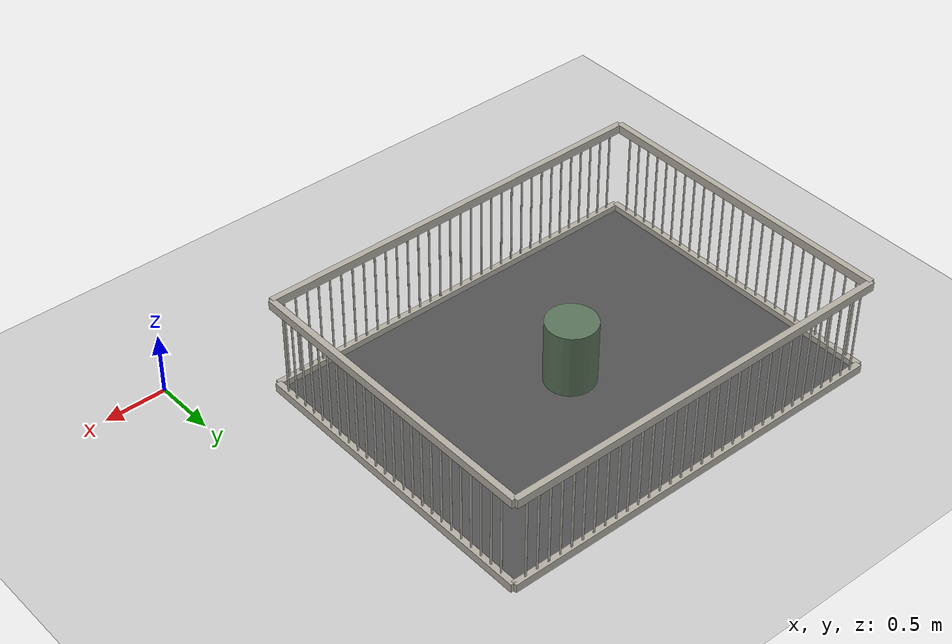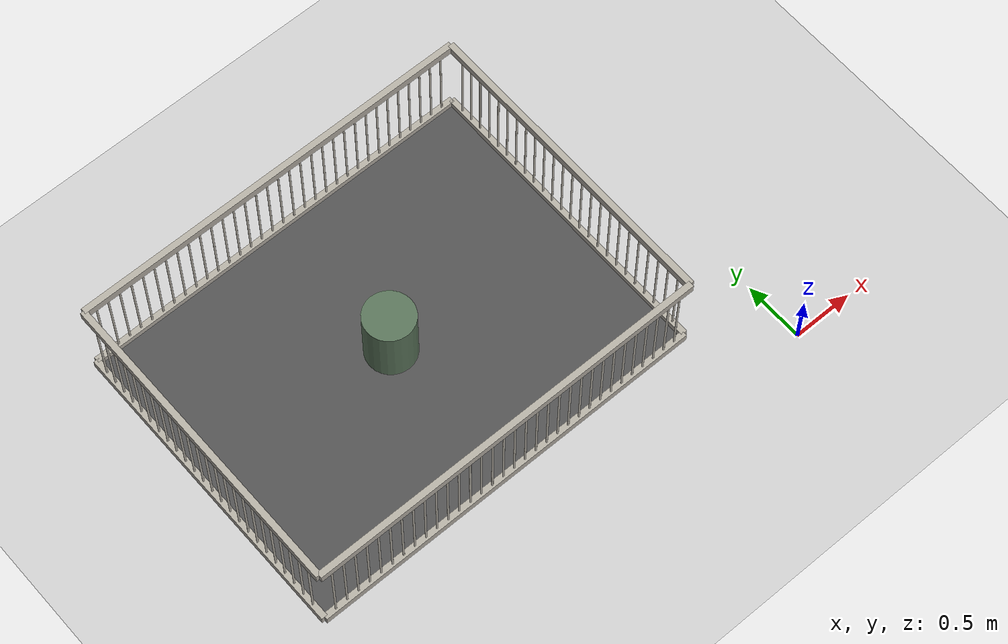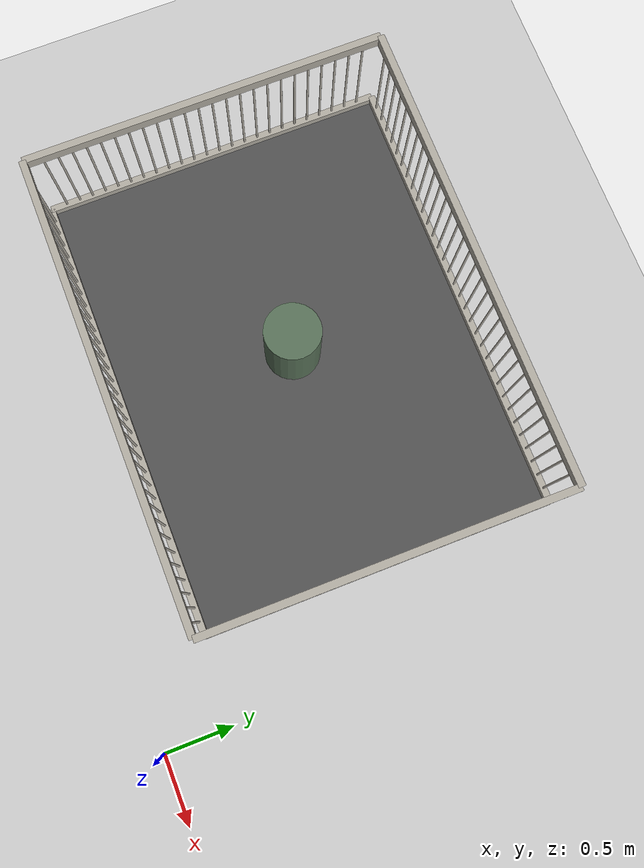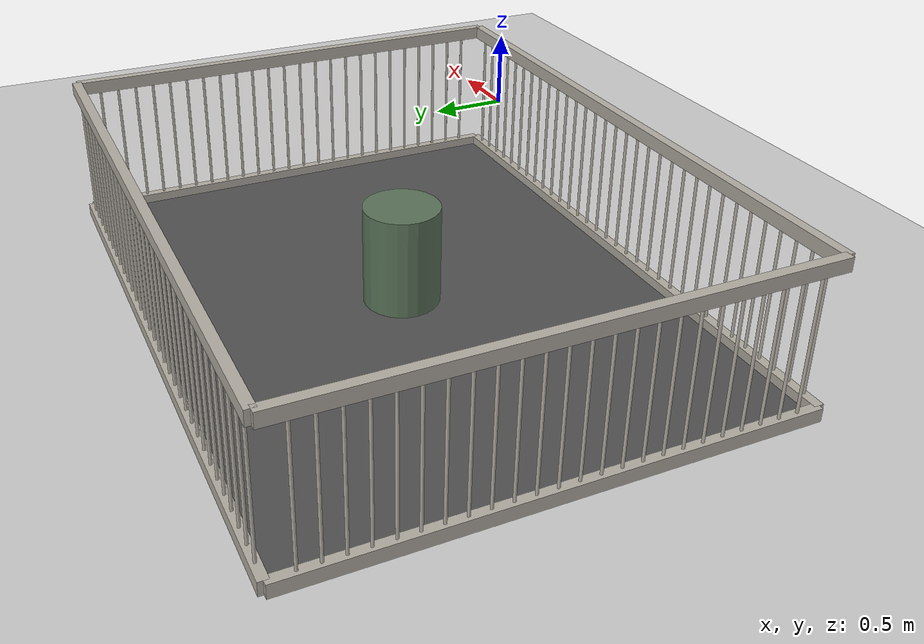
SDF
<sdf version="1.9">
 <world name="pig_pen_16units_world">
  <model name="ground_plane">
   <static>true</static>
   <link name="link">
    <collision name="collision">
     <geometry><plane><normal>0 0 1</normal><size>30 30</size></plane></geometry>
     <surface><friction><ode><mu>1.0</mu><mu2>1.0</mu2></ode></friction></surface>
    </collision>
    <visual name="visual">
     <geometry><plane><normal>0 0 1</normal><size>30 30</size></plane></geometry>
     <material>
      <ambient>0.8 0.8 0.8 1</ambient>
      <diffuse>0.8 0.8 0.8 1</diffuse>
      <specular>0.2 0.2 0.2 1</specular>
     </material>
    </visual>
   </link>
  </model>
  <model name="pen6">
   <pose>-2.275 1.795 0 0 0 0</pose>
   <static>true</static>
   <link name="floor">
    <pose>0 0 0.01 0 0 0</pose>
    <collision name="collision"><geometry><box><size>3.30 2.55 0.02</size></box></geometry></collision>
    <visual name="visual">
     <geometry><box><size>3.30 2.55 0.02</size></box></geometry>
     <material>
      <ambient>0.25 0.25 0.25 1</ambient>
      <diffuse>0.32 0.32 0.32 1</diffuse>
      <specular>0.05 0.05 0.05 1</specular>
     </material>
    </visual>
   </link>
   <link name="left_wall">
    <pose>0 1.275 0.415 0 0 0</pose>
    <collision name="top_rail_col">
     <pose>0 0 0.38 0 0 0</pose>
     <geometry><box><size>3.30 0.05 0.07</size></box></geometry>
    </collision>
    <visual name="top_rail_vis">
     <pose>0 0 0.38 0 0 0</pose>
     <geometry><box><size>3.30 0.05 0.07</size></box></geometry>
     <material><ambient>0.70 0.68 0.64 1</ambient><diffuse>0.70 0.68 0.64 1</diffuse></material>
    </visual>
    <collision name="bottom_rail_col">
     <pose>0 0 -0.38 0 0 0</pose>
     <geometry><box><size>3.30 0.05 0.07</size></box></geometry>
    </collision>
    <visual name="bottom_rail_vis">
     <pose>0 0 -0.38 0 0 0</pose>
     <geometry><box><size>3.30 0.05 0.07</size></box></geometry>
     <material><ambient>0.70 0.68 0.64 1</ambient><diffuse>0.70 0.68 0.64 1</diffuse></material>
    </visual>
    <collision name="bar_01_col">
     <pose>-1.55 0 0 0 0 0</pose>
     <geometry><cylinder><radius>0.0075</radius><length>0.69</length></cylinder></geometry>
    </collision>
    <visual name="bar_01_vis">
     <pose>-1.55 0 0 0 0 0</pose>
     <geometry><cylinder><radius>0.0075</radius><length>0.69</length></cylinder></geometry>
     <material><ambient>0.70 0.68 0.64 1</ambient><diffuse>0.70 0.68 0.64 1</diffuse></material>
    </visual>
    <collision name="bar_02_col">
     <pose>-1.45 0 0 0 0 0</pose>
     <geometry><cylinder><radius>0.0075</radius><length>0.69</length></cylinder></geometry>
    </collision>
    <visual name="bar_02_vis">
     <pose>-1.45 0 0 0 0 0</pose>
     <geometry><cylinder><radius>0.0075</radius><length>0.69</length></cylinder></geometry>
     <material><ambient>0.70 0.68 0.64 1</ambient><diffuse>0.70 0.68 0.64 1</diffuse></material>
    </visual>
    <collision name="bar_03_col">
     <pose>-1.35 0 0 0 0 0</pose>
     <geometry><cylinder><radius>0.0075</radius><length>0.69</length></cylinder></geometry>
    </collision>
    <visual name="bar_03_vis">
     <pose>-1.35 0 0 0 0 0</pose>
     <geometry><cylinder><radius>0.0075</radius><length>0.69</length></cylinder></geometry>
     <material><ambient>0.70 0.68 0.64 1</ambient><diffuse>0.70 0.68 0.64 1</diffuse></material>
    </visual>
    <collision name="bar_04_col">
     <pose>-1.25 0 0 0 0 0</pose>
     <geometry><cylinder><radius>0.0075</radius><length>0.69</length></cylinder></geometry>
    </collision>
    <visual name="bar_04_vis">
     <pose>-1.25 0 0 0 0 0</pose>
     <geometry><cylinder><radius>0.0075</radius><length>0.69</length></cylinder></geometry>
     <material><ambient>0.70 0.68 0.64 1</ambient><diffuse>0.70 0.68 0.64 1</diffuse></material>
    </visual>
    <collision name="bar_05_col">
     <pose>-1.15 0 0 0 0 0</pose>
     <geometry><cylinder><radius>0.0075</radius><length>0.69</length></cylinder></geometry>
    </collision>
    <visual name="bar_05_vis">
     <pose>-1.15 0 0 0 0 0</pose>
     <geometry><cylinder><radius>0.0075</radius><length>0.69</length></cylinder></geometry>
     <material><ambient>0.70 0.68 0.64 1</ambient><diffuse>0.70 0.68 0.64 1</diffuse></material>
    </visual>
    <collision name="bar_06_col">
     <pose>-1.05 0 0 0 0 0</pose>
     <geometry><cylinder><radius>0.0075</radius><length>0.69</length></cylinder></geometry>
    </collision>
    <visual name="bar_06_vis">
     <pose>-1.05 0 0 0 0 0</pose>
     <geometry><cylinder><radius>0.0075</radius><length>0.69</length></cylinder></geometry>
     <material><ambient>0.70 0.68 0.64 1</ambient><diffuse>0.70 0.68 0.64 1</diffuse></material>
    </visual>
    <collision name="bar_07_col">
     <pose>-0.95 0 0 0 0 0</pose>
     <geometry><cylinder><radius>0.0075</radius><length>0.69</length></cylinder></geometry>
    </collision>
    <visual name="bar_07_vis">
     <pose>-0.95 0 0 0 0 0</pose>
     <geometry><cylinder><radius>0.0075</radius><length>0.69</length></cylinder></geometry>
     <material><ambient>0.70 0.68 0.64 1</ambient><diffuse>0.70 0.68 0.64 1</diffuse></material>
    </visual>
    <collision name="bar_08_col">
     <pose>-0.85 0 0 0 0 0</pose>
     <geometry><cylinder><radius>0.0075</radius><length>0.69</length></cylinder></geometry>
    </collision>
    <visual name="bar_08_vis">
     <pose>-0.85 0 0 0 0 0</pose>
     <geometry><cylinder><radius>0.0075</radius><length>0.69</length></cylinder></geometry>
     <material><ambient>0.70 0.68 0.64 1</ambient><diffuse>0.70 0.68 0.64 1</diffuse></material>
    </visual>
    <collision name="bar_09_col">
     <pose>-0.75 0 0 0 0 0</pose>
     <geometry><cylinder><radius>0.0075</radius><length>0.69</length></cylinder></geometry>
    </collision>
    <visual name="bar_09_vis">
     <pose>-0.75 0 0 0 0 0</pose>
     <geometry><cylinder><radius>0.0075</radius><length>0.69</length></cylinder></geometry>
     <material><ambient>0.70 0.68 0.64 1</ambient><diffuse>0.70 0.68 0.64 1</diffuse></material>
    </visual>
    <collision name="bar_10_col">
     <pose>-0.65 0 0 0 0 0</pose>
     <geometry><cylinder><radius>0.0075</radius><length>0.69</length></cylinder></geometry>
    </collision>
    <visual name="bar_10_vis">
     <pose>-0.65 0 0 0 0 0</pose>
     <geometry><cylinder><radius>0.0075</radius><length>0.69</length></cylinder></geometry>
     <material><ambient>0.70 0.68 0.64 1</ambient><diffuse>0.70 0.68 0.64 1</diffuse></material>
    </visual>
    <collision name="bar_11_col">
     <pose>-0.55 0 0 0 0 0</pose>
     <geometry><cylinder><radius>0.0075</radius><length>0.69</length></cylinder></geometry>
    </collision>
    <visual name="bar_11_vis">
     <pose>-0.55 0 0 0 0 0</pose>
     <geometry><cylinder><radius>0.0075</radius><length>0.69</length></cylinder></geometry>
     <material><ambient>0.70 0.68 0.64 1</ambient><diffuse>0.70 0.68 0.64 1</diffuse></material>
    </visual>
    <collision name="bar_12_col">
     <pose>-0.45 0 0 0 0 0</pose>
     <geometry><cylinder><radius>0.0075</radius><length>0.69</length></cylinder></geometry>
    </collision>
    <visual name="bar_12_vis">
     <pose>-0.45 0 0 0 0 0</pose>
     <geometry><cylinder><radius>0.0075</radius><length>0.69</length></cylinder></geometry>
     <material><ambient>0.70 0.68 0.64 1</ambient><diffuse>0.70 0.68 0.64 1</diffuse></material>
    </visual>
    <collision name="bar_13_col">
     <pose>-0.35 0 0 0 0 0</pose>
     <geometry><cylinder><radius>0.0075</radius><length>0.69</length></cylinder></geometry>
    </collision>
    <visual name="bar_13_vis">
     <pose>-0.35 0 0 0 0 0</pose>
     <geometry><cylinder><radius>0.0075</radius><length>0.69</length></cylinder></geometry>
     <material><ambient>0.70 0.68 0.64 1</ambient><diffuse>0.70 0.68 0.64 1</diffuse></material>
    </visual>
    <collision name="bar_14_col">
     <pose>-0.25 0 0 0 0 0</pose>
     <geometry><cylinder><radius>0.0075</radius><length>0.69</length></cylinder></geometry>
    </collision>
    <visual name="bar_14_vis">
     <pose>-0.25 0 0 0 0 0</pose>
     <geometry><cylinder><radius>0.0075</radius><length>0.69</length></cylinder></geometry>
     <material><ambient>0.70 0.68 0.64 1</ambient><diffuse>0.70 0.68 0.64 1</diffuse></material>
    </visual>
    <collision name="bar_15_col">
     <pose>-0.15 0 0 0 0 0</pose>
     <geometry><cylinder><radius>0.0075</radius><length>0.69</length></cylinder></geometry>
    </collision>
    <visual name="bar_15_vis">
     <pose>-0.15 0 0 0 0 0</pose>
     <geometry><cylinder><radius>0.0075</radius><length>0.69</length></cylinder></geometry>
     <material><ambient>0.70 0.68 0.64 1</ambient><diffuse>0.70 0.68 0.64 1</diffuse></material>
    </visual>
    <collision name="bar_16_col">
     <pose>-0.05 0 0 0 0 0</pose>
     <geometry><cylinder><radius>0.0075</radius><length>0.69</length></cylinder></geometry>
    </collision>
    <visual name="bar_16_vis">
     <pose>-0.05 0 0 0 0 0</pose>
     <geometry><cylinder><radius>0.0075</radius><length>0.69</length></cylinder></geometry>
     <material><ambient>0.70 0.68 0.64 1</ambient><diffuse>0.70 0.68 0.64 1</diffuse></material>
    </visual>
    <collision name="bar_17_col">
     <pose>0.05 0 0 0 0 0</pose>
     <geometry><cylinder><radius>0.0075</radius><length>0.69</length></cylinder></geometry>
    </collision>
    <visual name="bar_17_vis">
     <pose>0.05 0 0 0 0 0</pose>
     <geometry><cylinder><radius>0.0075</radius><length>0.69</length></cylinder></geometry>
     <material><ambient>0.70 0.68 0.64 1</ambient><diffuse>0.70 0.68 0.64 1</diffuse></material>
    </visual>
    <collision name="bar_18_col">
     <pose>0.15 0 0 0 0 0</pose>
     <geometry><cylinder><radius>0.0075</radius><length>0.69</length></cylinder></geometry>
    </collision>
    <visual name="bar_18_vis">
     <pose>0.15 0 0 0 0 0</pose>
     <geometry><cylinder><radius>0.0075</radius><length>0.69</length></cylinder></geometry>
     <material><ambient>0.70 0.68 0.64 1</ambient><diffuse>0.70 0.68 0.64 1</diffuse></material>
    </visual>
    <collision name="bar_19_col">
     <pose>0.25 0 0 0 0 0</pose>
     <geometry><cylinder><radius>0.0075</radius><length>0.69</length></cylinder></geometry>
    </collision>
    <visual name="bar_19_vis">
     <pose>0.25 0 0 0 0 0</pose>
     <geometry><cylinder><radius>0.0075</radius><length>0.69</length></cylinder></geometry>
     <material><ambient>0.70 0.68 0.64 1</ambient><diffuse>0.70 0.68 0.64 1</diffuse></material>
    </visual>
    <collision name="bar_20_col">
     <pose>0.35 0 0 0 0 0</pose>
     <geometry><cylinder><radius>0.0075</radius><length>0.69</length></cylinder></geometry>
    </collision>
    <visual name="bar_20_vis">
     <pose>0.35 0 0 0 0 0</pose>
     <geometry><cylinder><radius>0.0075</radius><length>0.69</length></cylinder></geometry>
     <material><ambient>0.70 0.68 0.64 1</ambient><diffuse>0.70 0.68 0.64 1</diffuse></material>
    </visual>
    <collision name="bar_21_col">
     <pose>0.45 0 0 0 0 0</pose>
     <geometry><cylinder><radius>0.0075</radius><length>0.69</length></cylinder></geometry>
    </collision>
    <visual name="bar_21_vis">
     <pose>0.45 0 0 0 0 0</pose>
     <geometry><cylinder><radius>0.0075</radius><length>0.69</length></cylinder></geometry>
     <material><ambient>0.70 0.68 0.64 1</ambient><diffuse>0.70 0.68 0.64 1</diffuse></material>
    </visual>
    <collision name="bar_22_col">
     <pose>0.55 0 0 0 0 0</pose>
     <geometry><cylinder><radius>0.0075</radius><length>0.69</length></cylinder></geometry>
    </collision>
    <visual name="bar_22_vis">
     <pose>0.55 0 0 0 0 0</pose>
     <geometry><cylinder><radius>0.0075</radius><length>0.69</length></cylinder></geometry>
     <material><ambient>0.70 0.68 0.64 1</ambient><diffuse>0.70 0.68 0.64 1</diffuse></material>
    </visual>
    <collision name="bar_23_col">
     <pose>0.65 0 0 0 0 0</pose>
     <geometry><cylinder><radius>0.0075</radius><length>0.69</length></cylinder></geometry>
    </collision>
    <visual name="bar_23_vis">
     <pose>0.65 0 0 0 0 0</pose>
     <geometry><cylinder><radius>0.0075</radius><length>0.69</length></cylinder></geometry>
     <material><ambient>0.70 0.68 0.64 1</ambient><diffuse>0.70 0.68 0.64 1</diffuse></material>
    </visual>
    <collision name="bar_24_col">
     <pose>0.75 0 0 0 0 0</pose>
     <geometry><cylinder><radius>0.0075</radius><length>0.69</length></cylinder></geometry>
    </collision>
    <visual name="bar_24_vis">
     <pose>0.75 0 0 0 0 0</pose>
     <geometry><cylinder><radius>0.0075</radius><length>0.69</length></cylinder></geometry>
     <material><ambient>0.70 0.68 0.64 1</ambient><diffuse>0.70 0.68 0.64 1</diffuse></material>
    </visual>
    <collision name="bar_25_col">
     <pose>0.85 0 0 0 0 0</pose>
     <geometry><cylinder><radius>0.0075</radius><length>0.69</length></cylinder></geometry>
    </collision>
    <visual name="bar_25_vis">
     <pose>0.85 0 0 0 0 0</pose>
     <geometry><cylinder><radius>0.0075</radius><length>0.69</length></cylinder></geometry>
     <material><ambient>0.70 0.68 0.64 1</ambient><diffuse>0.70 0.68 0.64 1</diffuse></material>
    </visual>
    <collision name="bar_26_col">
     <pose>0.95 0 0 0 0 0</pose>
     <geometry><cylinder><radius>0.0075</radius><length>0.69</length></cylinder></geometry>
    </collision>
    <visual name="bar_26_vis">
     <pose>0.95 0 0 0 0 0</pose>
     <geometry><cylinder><radius>0.0075</radius><length>0.69</length></cylinder></geometry>
     <material><ambient>0.70 0.68 0.64 1</ambient><diffuse>0.70 0.68 0.64 1</diffuse></material>
    </visual>
    <collision name="bar_27_col">
     <pose>1.05 0 0 0 0 0</pose>
     <geometry><cylinder><radius>0.0075</radius><length>0.69</length></cylinder></geometry>
    </collision>
    <visual name="bar_27_vis">
     <pose>1.05 0 0 0 0 0</pose>
     <geometry><cylinder><radius>0.0075</radius><length>0.69</length></cylinder></geometry>
     <material><ambient>0.70 0.68 0.64 1</ambient><diffuse>0.70 0.68 0.64 1</diffuse></material>
    </visual>
    <collision name="bar_28_col">
     <pose>1.15 0 0 0 0 0</pose>
     <geometry><cylinder><radius>0.0075</radius><length>0.69</length></cylinder></geometry>
    </collision>
    <visual name="bar_28_vis">
     <pose>1.15 0 0 0 0 0</pose>
     <geometry><cylinder><radius>0.0075</radius><length>0.69</length></cylinder></geometry>
     <material><ambient>0.70 0.68 0.64 1</ambient><diffuse>0.70 0.68 0.64 1</diffuse></material>
    </visual>
    <collision name="bar_29_col">
     <pose>1.25 0 0 0 0 0</pose>
     <geometry><cylinder><radius>0.0075</radius><length>0.69</length></cylinder></geometry>
    </collision>
    <visual name="bar_29_vis">
     <pose>1.25 0 0 0 0 0</pose>
     <geometry><cylinder><radius>0.0075</radius><length>0.69</length></cylinder></geometry>
     <material><ambient>0.70 0.68 0.64 1</ambient><diffuse>0.70 0.68 0.64 1</diffuse></material>
    </visual>
    <collision name="bar_30_col">
     <pose>1.35 0 0 0 0 0</pose>
     <geometry><cylinder><radius>0.0075</radius><length>0.69</length></cylinder></geometry>
    </collision>
    <visual name="bar_30_vis">
     <pose>1.35 0 0 0 0 0</pose>
     <geometry><cylinder><radius>0.0075</radius><length>0.69</length></cylinder></geometry>
     <material><ambient>0.70 0.68 0.64 1</ambient><diffuse>0.70 0.68 0.64 1</diffuse></material>
    </visual>
    <collision name="bar_31_col">
     <pose>1.45 0 0 0 0 0</pose>
     <geometry><cylinder><radius>0.0075</radius><length>0.69</length></cylinder></geometry>
    </collision>
    <visual name="bar_31_vis">
     <pose>1.45 0 0 0 0 0</pose>
     <geometry><cylinder><radius>0.0075</radius><length>0.69</length></cylinder></geometry>
     <material><ambient>0.70 0.68 0.64 1</ambient><diffuse>0.70 0.68 0.64 1</diffuse></material>
    </visual>
    <collision name="bar_32_col">
     <pose>1.55 0 0 0 0 0</pose>
     <geometry><cylinder><radius>0.0075</radius><length>0.69</length></cylinder></geometry>
    </collision>
    <visual name="bar_32_vis">
     <pose>1.55 0 0 0 0 0</pose>
     <geometry><cylinder><radius>0.0075</radius><length>0.69</length></cylinder></geometry>
     <material><ambient>0.70 0.68 0.64 1</ambient><diffuse>0.70 0.68 0.64 1</diffuse></material>
    </visual>
   </link>
   <link name="right_wall">
    <pose>0 -1.275 0.415 0 0 0</pose>
    <collision name="top_rail_col">
     <pose>0 0 0.38 0 0 0</pose>
     <geometry><box><size>3.30 0.05 0.07</size></box></geometry>
    </collision>
    <visual name="top_rail_vis">
     <pose>0 0 0.38 0 0 0</pose>
     <geometry><box><size>3.30 0.05 0.07</size></box></geometry>
     <material><ambient>0.70 0.68 0.64 1</ambient><diffuse>0.70 0.68 0.64 1</diffuse></material>
    </visual>
    <collision name="bottom_rail_col">
     <pose>0 0 -0.38 0 0 0</pose>
     <geometry><box><size>3.30 0.05 0.07</size></box></geometry>
    </collision>
    <visual name="bottom_rail_vis">
     <pose>0 0 -0.38 0 0 0</pose>
     <geometry><box><size>3.30 0.05 0.07</size></box></geometry>
     <material><ambient>0.70 0.68 0.64 1</ambient><diffuse>0.70 0.68 0.64 1</diffuse></material>
    </visual>
    <collision name="bar_01_col">
     <pose>-1.55 0 0 0 0 0</pose>
     <geometry><cylinder><radius>0.0075</radius><length>0.69</length></cylinder></geometry>
    </collision>
    <visual name="bar_01_vis">
     <pose>-1.55 0 0 0 0 0</pose>
     <geometry><cylinder><radius>0.0075</radius><length>0.69</length></cylinder></geometry>
     <material><ambient>0.70 0.68 0.64 1</ambient><diffuse>0.70 0.68 0.64 1</diffuse></material>
    </visual>
    <collision name="bar_02_col">
     <pose>-1.45 0 0 0 0 0</pose>
     <geometry><cylinder><radius>0.0075</radius><length>0.69</length></cylinder></geometry>
    </collision>
    <visual name="bar_02_vis">
     <pose>-1.45 0 0 0 0 0</pose>
     <geometry><cylinder><radius>0.0075</radius><length>0.69</length></cylinder></geometry>
     <material><ambient>0.70 0.68 0.64 1</ambient><diffuse>0.70 0.68 0.64 1</diffuse></material>
    </visual>
    <collision name="bar_03_col">
     <pose>-1.35 0 0 0 0 0</pose>
     <geometry><cylinder><radius>0.0075</radius><length>0.69</length></cylinder></geometry>
    </collision>
    <visual name="bar_03_vis">
     <pose>-1.35 0 0 0 0 0</pose>
     <geometry><cylinder><radius>0.0075</radius><length>0.69</length></cylinder></geometry>
     <material><ambient>0.70 0.68 0.64 1</ambient><diffuse>0.70 0.68 0.64 1</diffuse></material>
    </visual>
    <collision name="bar_04_col">
     <pose>-1.25 0 0 0 0 0</pose>
     <geometry><cylinder><radius>0.0075</radius><length>0.69</length></cylinder></geometry>
    </collision>
    <visual name="bar_04_vis">
     <pose>-1.25 0 0 0 0 0</pose>
     <geometry><cylinder><radius>0.0075</radius><length>0.69</length></cylinder></geometry>
     <material><ambient>0.70 0.68 0.64 1</ambient><diffuse>0.70 0.68 0.64 1</diffuse></material>
    </visual>
    <collision name="bar_05_col">
     <pose>-1.15 0 0 0 0 0</pose>
     <geometry><cylinder><radius>0.0075</radius><length>0.69</length></cylinder></geometry>
    </collision>
    <visual name="bar_05_vis">
     <pose>-1.15 0 0 0 0 0</pose>
     <geometry><cylinder><radius>0.0075</radius><length>0.69</length></cylinder></geometry>
     <material><ambient>0.70 0.68 0.64 1</ambient><diffuse>0.70 0.68 0.64 1</diffuse></material>
    </visual>
    <collision name="bar_06_col">
     <pose>-1.05 0 0 0 0 0</pose>
     <geometry><cylinder><radius>0.0075</radius><length>0.69</length></cylinder></geometry>
    </collision>
    <visual name="bar_06_vis">
     <pose>-1.05 0 0 0 0 0</pose>
     <geometry><cylinder><radius>0.0075</radius><length>0.69</length></cylinder></geometry>
     <material><ambient>0.70 0.68 0.64 1</ambient><diffuse>0.70 0.68 0.64 1</diffuse></material>
    </visual>
    <collision name="bar_07_col">
     <pose>-0.95 0 0 0 0 0</pose>
     <geometry><cylinder><radius>0.0075</radius><length>0.69</length></cylinder></geometry>
    </collision>
    <visual name="bar_07_vis">
     <pose>-0.95 0 0 0 0 0</pose>
     <geometry><cylinder><radius>0.0075</radius><length>0.69</length></cylinder></geometry>
     <material><ambient>0.70 0.68 0.64 1</ambient><diffuse>0.70 0.68 0.64 1</diffuse></material>
    </visual>
    <collision name="bar_08_col">
     <pose>-0.85 0 0 0 0 0</pose>
     <geometry><cylinder><radius>0.0075</radius><length>0.69</length></cylinder></geometry>
    </collision>
    <visual name="bar_08_vis">
     <pose>-0.85 0 0 0 0 0</pose>
     <geometry><cylinder><radius>0.0075</radius><length>0.69</length></cylinder></geometry>
     <material><ambient>0.70 0.68 0.64 1</ambient><diffuse>0.70 0.68 0.64 1</diffuse></material>
    </visual>
    <collision name="bar_09_col">
     <pose>-0.75 0 0 0 0 0</pose>
     <geometry><cylinder><radius>0.0075</radius><length>0.69</length></cylinder></geometry>
    </collision>
    <visual name="bar_09_vis">
     <pose>-0.75 0 0 0 0 0</pose>
     <geometry><cylinder><radius>0.0075</radius><length>0.69</length></cylinder></geometry>
     <material><ambient>0.70 0.68 0.64 1</ambient><diffuse>0.70 0.68 0.64 1</diffuse></material>
    </visual>
    <collision name="bar_10_col">
     <pose>-0.65 0 0 0 0 0</pose>
     <geometry><cylinder><radius>0.0075</radius><length>0.69</length></cylinder></geometry>
    </collision>
    <visual name="bar_10_vis">
     <pose>-0.65 0 0 0 0 0</pose>
     <geometry><cylinder><radius>0.0075</radius><length>0.69</length></cylinder></geometry>
     <material><ambient>0.70 0.68 0.64 1</ambient><diffuse>0.70 0.68 0.64 1</diffuse></material>
    </visual>
    <collision name="bar_11_col">
     <pose>-0.55 0 0 0 0 0</pose>
     <geometry><cylinder><radius>0.0075</radius><length>0.69</length></cylinder></geometry>
    </collision>
    <visual name="bar_11_vis">
     <pose>-0.55 0 0 0 0 0</pose>
     <geometry><cylinder><radius>0.0075</radius><length>0.69</length></cylinder></geometry>
     <material><ambient>0.70 0.68 0.64 1</ambient><diffuse>0.70 0.68 0.64 1</diffuse></material>
    </visual>
    <collision name="bar_12_col">
     <pose>-0.45 0 0 0 0 0</pose>
     <geometry><cylinder><radius>0.0075</radius><length>0.69</length></cylinder></geometry>
    </collision>
    <visual name="bar_12_vis">
     <pose>-0.45 0 0 0 0 0</pose>
     <geometry><cylinder><radius>0.0075</radius><length>0.69</length></cylinder></geometry>
     <material><ambient>0.70 0.68 0.64 1</ambient><diffuse>0.70 0.68 0.64 1</diffuse></material>
    </visual>
    <collision name="bar_13_col">
     <pose>-0.35 0 0 0 0 0</pose>
     <geometry><cylinder><radius>0.0075</radius><length>0.69</length></cylinder></geometry>
    </collision>
    <visual name="bar_13_vis">
     <pose>-0.35 0 0 0 0 0</pose>
     <geometry><cylinder><radius>0.0075</radius><length>0.69</length></cylinder></geometry>
     <material><ambient>0.70 0.68 0.64 1</ambient><diffuse>0.70 0.68 0.64 1</diffuse></material>
    </visual>
    <collision name="bar_14_col">
     <pose>-0.25 0 0 0 0 0</pose>
     <geometry><cylinder><radius>0.0075</radius><length>0.69</length></cylinder></geometry>
    </collision>
    <visual name="bar_14_vis">
     <pose>-0.25 0 0 0 0 0</pose>
     <geometry><cylinder><radius>0.0075</radius><length>0.69</length></cylinder></geometry>
     <material><ambient>0.70 0.68 0.64 1</ambient><diffuse>0.70 0.68 0.64 1</diffuse></material>
    </visual>
    <collision name="bar_15_col">
     <pose>-0.15 0 0 0 0 0</pose>
     <geometry><cylinder><radius>0.0075</radius><length>0.69</length></cylinder></geometry>
    </collision>
    <visual name="bar_15_vis">
     <pose>-0.15 0 0 0 0 0</pose>
     <geometry><cylinder><radius>0.0075</radius><length>0.69</length></cylinder></geometry>
     <material><ambient>0.70 0.68 0.64 1</ambient><diffuse>0.70 0.68 0.64 1</diffuse></material>
    </visual>
    <collision name="bar_16_col">
     <pose>-0.05 0 0 0 0 0</pose>
     <geometry><cylinder><radius>0.0075</radius><length>0.69</length></cylinder></geometry>
    </collision>
    <visual name="bar_16_vis">
     <pose>-0.05 0 0 0 0 0</pose>
     <geometry><cylinder><radius>0.0075</radius><length>0.69</length></cylinder></geometry>
     <material><ambient>0.70 0.68 0.64 1</ambient><diffuse>0.70 0.68 0.64 1</diffuse></material>
    </visual>
    <collision name="bar_17_col">
     <pose>0.05 0 0 0 0 0</pose>
     <geometry><cylinder><radius>0.0075</radius><length>0.69</length></cylinder></geometry>
    </collision>
    <visual name="bar_17_vis">
     <pose>0.05 0 0 0 0 0</pose>
     <geometry><cylinder><radius>0.0075</radius><length>0.69</length></cylinder></geometry>
     <material><ambient>0.70 0.68 0.64 1</ambient><diffuse>0.70 0.68 0.64 1</diffuse></material>
    </visual>
    <collision name="bar_18_col">
     <pose>0.15 0 0 0 0 0</pose>
     <geometry><cylinder><radius>0.0075</radius><length>0.69</length></cylinder></geometry>
    </collision>
    <visual name="bar_18_vis">
     <pose>0.15 0 0 0 0 0</pose>
     <geometry><cylinder><radius>0.0075</radius><length>0.69</length></cylinder></geometry>
     <material><ambient>0.70 0.68 0.64 1</ambient><diffuse>0.70 0.68 0.64 1</diffuse></material>
    </visual>
    <collision name="bar_19_col">
     <pose>0.25 0 0 0 0 0</pose>
     <geometry><cylinder><radius>0.0075</radius><length>0.69</length></cylinder></geometry>
    </collision>
    <visual name="bar_19_vis">
     <pose>0.25 0 0 0 0 0</pose>
     <geometry><cylinder><radius>0.0075</radius><length>0.69</length></cylinder></geometry>
     <material><ambient>0.70 0.68 0.64 1</ambient><diffuse>0.70 0.68 0.64 1</diffuse></material>
    </visual>
    <collision name="bar_20_col">
     <pose>0.35 0 0 0 0 0</pose>
     <geometry><cylinder><radius>0.0075</radius><length>0.69</length></cylinder></geometry>
    </collision>
    <visual name="bar_20_vis">
     <pose>0.35 0 0 0 0 0</pose>
     <geometry><cylinder><radius>0.0075</radius><length>0.69</length></cylinder></geometry>
     <material><ambient>0.70 0.68 0.64 1</ambient><diffuse>0.70 0.68 0.64 1</diffuse></material>
    </visual>
    <collision name="bar_21_col">
     <pose>0.45 0 0 0 0 0</pose>
     <geometry><cylinder><radius>0.0075</radius><length>0.69</length></cylinder></geometry>
    </collision>
    <visual name="bar_21_vis">
     <pose>0.45 0 0 0 0 0</pose>
     <geometry><cylinder><radius>0.0075</radius><length>0.69</length></cylinder></geometry>
     <material><ambient>0.70 0.68 0.64 1</ambient><diffuse>0.70 0.68 0.64 1</diffuse></material>
    </visual>
    <collision name="bar_22_col">
     <pose>0.55 0 0 0 0 0</pose>
     <geometry><cylinder><radius>0.0075</radius><length>0.69</length></cylinder></geometry>
    </collision>
    <visual name="bar_22_vis">
     <pose>0.55 0 0 0 0 0</pose>
     <geometry><cylinder><radius>0.0075</radius><length>0.69</length></cylinder></geometry>
     <material><ambient>0.70 0.68 0.64 1</ambient><diffuse>0.70 0.68 0.64 1</diffuse></material>
    </visual>
    <collision name="bar_23_col">
     <pose>0.65 0 0 0 0 0</pose>
     <geometry><cylinder><radius>0.0075</radius><length>0.69</length></cylinder></geometry>
    </collision>
    <visual name="bar_23_vis">
     <pose>0.65 0 0 0 0 0</pose>
     <geometry><cylinder><radius>0.0075</radius><length>0.69</length></cylinder></geometry>
     <material><ambient>0.70 0.68 0.64 1</ambient><diffuse>0.70 0.68 0.64 1</diffuse></material>
    </visual>
    <collision name="bar_24_col">
     <pose>0.75 0 0 0 0 0</pose>
     <geometry><cylinder><radius>0.0075</radius><length>0.69</length></cylinder></geometry>
    </collision>
    <visual name="bar_24_vis">
     <pose>0.75 0 0 0 0 0</pose>
     <geometry><cylinder><radius>0.0075</radius><length>0.69</length></cylinder></geometry>
     <material><ambient>0.70 0.68 0.64 1</ambient><diffuse>0.70 0.68 0.64 1</diffuse></material>
    </visual>
    <collision name="bar_25_col">
     <pose>0.85 0 0 0 0 0</pose>
     <geometry><cylinder><radius>0.0075</radius><length>0.69</length></cylinder></geometry>
    </collision>
    <visual name="bar_25_vis">
     <pose>0.85 0 0 0 0 0</pose>
     <geometry><cylinder><radius>0.0075</radius><length>0.69</length></cylinder></geometry>
     <material><ambient>0.70 0.68 0.64 1</ambient><diffuse>0.70 0.68 0.64 1</diffuse></material>
    </visual>
    <collision name="bar_26_col">
     <pose>0.95 0 0 0 0 0</pose>
     <geometry><cylinder><radius>0.0075</radius><length>0.69</length></cylinder></geometry>
    </collision>
    <visual name="bar_26_vis">
     <pose>0.95 0 0 0 0 0</pose>
     <geometry><cylinder><radius>0.0075</radius><length>0.69</length></cylinder></geometry>
     <material><ambient>0.70 0.68 0.64 1</ambient><diffuse>0.70 0.68 0.64 1</diffuse></material>
    </visual>
    <collision name="bar_27_col">
     <pose>1.05 0 0 0 0 0</pose>
     <geometry><cylinder><radius>0.0075</radius><length>0.69</length></cylinder></geometry>
    </collision>
    <visual name="bar_27_vis">
     <pose>1.05 0 0 0 0 0</pose>
     <geometry><cylinder><radius>0.0075</radius><length>0.69</length></cylinder></geometry>
     <material><ambient>0.70 0.68 0.64 1</ambient><diffuse>0.70 0.68 0.64 1</diffuse></material>
    </visual>
    <collision name="bar_28_col">
     <pose>1.15 0 0 0 0 0</pose>
     <geometry><cylinder><radius>0.0075</radius><length>0.69</length></cylinder></geometry>
    </collision>
    <visual name="bar_28_vis">
     <pose>1.15 0 0 0 0 0</pose>
     <geometry><cylinder><radius>0.0075</radius><length>0.69</length></cylinder></geometry>
     <material><ambient>0.70 0.68 0.64 1</ambient><diffuse>0.70 0.68 0.64 1</diffuse></material>
    </visual>
    <collision name="bar_29_col">
     <pose>1.25 0 0 0 0 0</pose>
     <geometry><cylinder><radius>0.0075</radius><length>0.69</length></cylinder></geometry>
    </collision>
    <visual name="bar_29_vis">
     <pose>1.25 0 0 0 0 0</pose>
     <geometry><cylinder><radius>0.0075</radius><length>0.69</length></cylinder></geometry>
     <material><ambient>0.70 0.68 0.64 1</ambient><diffuse>0.70 0.68 0.64 1</diffuse></material>
    </visual>
    <collision name="bar_30_col">
     <pose>1.35 0 0 0 0 0</pose>
     <geometry><cylinder><radius>0.0075</radius><length>0.69</length></cylinder></geometry>
    </collision>
    <visual name="bar_30_vis">
     <pose>1.35 0 0 0 0 0</pose>
     <geometry><cylinder><radius>0.0075</radius><length>0.69</length></cylinder></geometry>
     <material><ambient>0.70 0.68 0.64 1</ambient><diffuse>0.70 0.68 0.64 1</diffuse></material>
    </visual>
    <collision name="bar_31_col">
     <pose>1.45 0 0 0 0 0</pose>
     <geometry><cylinder><radius>0.0075</radius><length>0.69</length></cylinder></geometry>
    </collision>
    <visual name="bar_31_vis">
     <pose>1.45 0 0 0 0 0</pose>
     <geometry><cylinder><radius>0.0075</radius><length>0.69</length></cylinder></geometry>
     <material><ambient>0.70 0.68 0.64 1</ambient><diffuse>0.70 0.68 0.64 1</diffuse></material>
    </visual>
    <collision name="bar_32_col">
     <pose>1.55 0 0 0 0 0</pose>
     <geometry><cylinder><radius>0.0075</radius><length>0.69</length></cylinder></geometry>
    </collision>
    <visual name="bar_32_vis">
     <pose>1.55 0 0 0 0 0</pose>
     <geometry><cylinder><radius>0.0075</radius><length>0.69</length></cylinder></geometry>
     <material><ambient>0.70 0.68 0.64 1</ambient><diffuse>0.70 0.68 0.64 1</diffuse></material>
    </visual>
   </link>
   <link name="back_wall">
    <pose>1.65 0 0.415 0 0 0</pose>
    <collision name="top_rail_col">
     <pose>0 0 0.38 0 0 0</pose>
     <geometry><box><size>0.05 2.55 0.07</size></box></geometry>
    </collision>
    <visual name="top_rail_vis">
     <pose>0 0 0.38 0 0 0</pose>
     <geometry><box><size>0.05 2.55 0.07</size></box></geometry>
     <material><ambient>0.70 0.68 0.64 1</ambient><diffuse>0.70 0.68 0.64 1</diffuse></material>
    </visual>
    <collision name="bottom_rail_col">
     <pose>0 0 -0.38 0 0 0</pose>
     <geometry><box><size>0.05 2.55 0.07</size></box></geometry>
    </collision>
    <visual name="bottom_rail_vis">
     <pose>0 0 -0.38 0 0 0</pose>
     <geometry><box><size>0.05 2.55 0.07</size></box></geometry>
     <material><ambient>0.70 0.68 0.64 1</ambient><diffuse>0.70 0.68 0.64 1</diffuse></material>
    </visual>
    <collision name="bar_01_col">
     <pose>0 -1.15 0 0 0 0</pose>
     <geometry><cylinder><radius>0.0075</radius><length>0.69</length></cylinder></geometry>
    </collision>
    <visual name="bar_01_vis">
     <pose>0 -1.15 0 0 0 0</pose>
     <geometry><cylinder><radius>0.0075</radius><length>0.69</length></cylinder></geometry>
     <material><ambient>0.70 0.68 0.64 1</ambient><diffuse>0.70 0.68 0.64 1</diffuse></material>
    </visual>
    <collision name="bar_02_col">
     <pose>0 -1.05 0 0 0 0</pose>
     <geometry><cylinder><radius>0.0075</radius><length>0.69</length></cylinder></geometry>
    </collision>
    <visual name="bar_02_vis">
     <pose>0 -1.05 0 0 0 0</pose>
     <geometry><cylinder><radius>0.0075</radius><length>0.69</length></cylinder></geometry>
     <material><ambient>0.70 0.68 0.64 1</ambient><diffuse>0.70 0.68 0.64 1</diffuse></material>
    </visual>
    <collision name="bar_03_col">
     <pose>0 -0.95 0 0 0 0</pose>
     <geometry><cylinder><radius>0.0075</radius><length>0.69</length></cylinder></geometry>
    </collision>
    <visual name="bar_03_vis">
     <pose>0 -0.95 0 0 0 0</pose>
     <geometry><cylinder><radius>0.0075</radius><length>0.69</length></cylinder></geometry>
     <material><ambient>0.70 0.68 0.64 1</ambient><diffuse>0.70 0.68 0.64 1</diffuse></material>
    </visual>
    <collision name="bar_04_col">
     <pose>0 -0.85 0 0 0 0</pose>
     <geometry><cylinder><radius>0.0075</radius><length>0.69</length></cylinder></geometry>
    </collision>
    <visual name="bar_04_vis">
     <pose>0 -0.85 0 0 0 0</pose>
     <geometry><cylinder><radius>0.0075</radius><length>0.69</length></cylinder></geometry>
     <material><ambient>0.70 0.68 0.64 1</ambient><diffuse>0.70 0.68 0.64 1</diffuse></material>
    </visual>
    <collision name="bar_05_col">
     <pose>0 -0.75 0 0 0 0</pose>
     <geometry><cylinder><radius>0.0075</radius><length>0.69</length></cylinder></geometry>
    </collision>
    <visual name="bar_05_vis">
     <pose>0 -0.75 0 0 0 0</pose>
     <geometry><cylinder><radius>0.0075</radius><length>0.69</length></cylinder></geometry>
     <material><ambient>0.70 0.68 0.64 1</ambient><diffuse>0.70 0.68 0.64 1</diffuse></material>
    </visual>
    <collision name="bar_06_col">
     <pose>0 -0.65 0 0 0 0</pose>
     <geometry><cylinder><radius>0.0075</radius><length>0.69</length></cylinder></geometry>
    </collision>
    <visual name="bar_06_vis">
     <pose>0 -0.65 0 0 0 0</pose>
     <geometry><cylinder><radius>0.0075</radius><length>0.69</length></cylinder></geometry>
     <material><ambient>0.70 0.68 0.64 1</ambient><diffuse>0.70 0.68 0.64 1</diffuse></material>
    </visual>
    <collision name="bar_07_col">
     <pose>0 -0.55 0 0 0 0</pose>
     <geometry><cylinder><radius>0.0075</radius><length>0.69</length></cylinder></geometry>
    </collision>
    <visual name="bar_07_vis">
     <pose>0 -0.55 0 0 0 0</pose>
     <geometry><cylinder><radius>0.0075</radius><length>0.69</length></cylinder></geometry>
     <material><ambient>0.70 0.68 0.64 1</ambient><diffuse>0.70 0.68 0.64 1</diffuse></material>
    </visual>
    <collision name="bar_08_col">
     <pose>0 -0.45 0 0 0 0</pose>
     <geometry><cylinder><radius>0.0075</radius><length>0.69</length></cylinder></geometry>
    </collision>
    <visual name="bar_08_vis">
     <pose>0 -0.45 0 0 0 0</pose>
     <geometry><cylinder><radius>0.0075</radius><length>0.69</length></cylinder></geometry>
     <material><ambient>0.70 0.68 0.64 1</ambient><diffuse>0.70 0.68 0.64 1</diffuse></material>
    </visual>
    <collision name="bar_09_col">
     <pose>0 -0.35 0 0 0 0</pose>
     <geometry><cylinder><radius>0.0075</radius><length>0.69</length></cylinder></geometry>
    </collision>
    <visual name="bar_09_vis">
     <pose>0 -0.35 0 0 0 0</pose>
     <geometry><cylinder><radius>0.0075</radius><length>0.69</length></cylinder></geometry>
     <material><ambient>0.70 0.68 0.64 1</ambient><diffuse>0.70 0.68 0.64 1</diffuse></material>
    </visual>
    <collision name="bar_10_col">
     <pose>0 -0.25 0 0 0 0</pose>
     <geometry><cylinder><radius>0.0075</radius><length>0.69</length></cylinder></geometry>
    </collision>
    <visual name="bar_10_vis">
     <pose>0 -0.25 0 0 0 0</pose>
     <geometry><cylinder><radius>0.0075</radius><length>0.69</length></cylinder></geometry>
     <material><ambient>0.70 0.68 0.64 1</ambient><diffuse>0.70 0.68 0.64 1</diffuse></material>
    </visual>
    <collision name="bar_11_col">
     <pose>0 -0.15 0 0 0 0</pose>
     <geometry><cylinder><radius>0.0075</radius><length>0.69</length></cylinder></geometry>
    </collision>
    <visual name="bar_11_vis">
     <pose>0 -0.15 0 0 0 0</pose>
     <geometry><cylinder><radius>0.0075</radius><length>0.69</length></cylinder></geometry>
     <material><ambient>0.70 0.68 0.64 1</ambient><diffuse>0.70 0.68 0.64 1</diffuse></material>
    </visual>
    <collision name="bar_12_col">
     <pose>0 -0.05 0 0 0 0</pose>
     <geometry><cylinder><radius>0.0075</radius><length>0.69</length></cylinder></geometry>
    </collision>
    <visual name="bar_12_vis">
     <pose>0 -0.05 0 0 0 0</pose>
     <geometry><cylinder><radius>0.0075</radius><length>0.69</length></cylinder></geometry>
     <material><ambient>0.70 0.68 0.64 1</ambient><diffuse>0.70 0.68 0.64 1</diffuse></material>
    </visual>
    <collision name="bar_13_col">
     <pose>0 0.05 0 0 0 0</pose>
     <geometry><cylinder><radius>0.0075</radius><length>0.69</length></cylinder></geometry>
    </collision>
    <visual name="bar_13_vis">
     <pose>0 0.05 0 0 0 0</pose>
     <geometry><cylinder><radius>0.0075</radius><length>0.69</length></cylinder></geometry>
     <material><ambient>0.70 0.68 0.64 1</ambient><diffuse>0.70 0.68 0.64 1</diffuse></material>
    </visual>
    <collision name="bar_14_col">
     <pose>0 0.15 0 0 0 0</pose>
     <geometry><cylinder><radius>0.0075</radius><length>0.69</length></cylinder></geometry>
    </collision>
    <visual name="bar_14_vis">
     <pose>0 0.15 0 0 0 0</pose>
     <geometry><cylinder><radius>0.0075</radius><length>0.69</length></cylinder></geometry>
     <material><ambient>0.70 0.68 0.64 1</ambient><diffuse>0.70 0.68 0.64 1</diffuse></material>
    </visual>
    <collision name="bar_15_col">
     <pose>0 0.25 0 0 0 0</pose>
     <geometry><cylinder><radius>0.0075</radius><length>0.69</length></cylinder></geometry>
    </collision>
    <visual name="bar_15_vis">
     <pose>0 0.25 0 0 0 0</pose>
     <geometry><cylinder><radius>0.0075</radius><length>0.69</length></cylinder></geometry>
     <material><ambient>0.70 0.68 0.64 1</ambient><diffuse>0.70 0.68 0.64 1</diffuse></material>
    </visual>
    <collision name="bar_16_col">
     <pose>0 0.35 0 0 0 0</pose>
     <geometry><cylinder><radius>0.0075</radius><length>0.69</length></cylinder></geometry>
    </collision>
    <visual name="bar_16_vis">
     <pose>0 0.35 0 0 0 0</pose>
     <geometry><cylinder><radius>0.0075</radius><length>0.69</length></cylinder></geometry>
     <material><ambient>0.70 0.68 0.64 1</ambient><diffuse>0.70 0.68 0.64 1</diffuse></material>
    </visual>
    <collision name="bar_17_col">
     <pose>0 0.45 0 0 0 0</pose>
     <geometry><cylinder><radius>0.0075</radius><length>0.69</length></cylinder></geometry>
    </collision>
    <visual name="bar_17_vis">
     <pose>0 0.45 0 0 0 0</pose>
     <geometry><cylinder><radius>0.0075</radius><length>0.69</length></cylinder></geometry>
     <material><ambient>0.70 0.68 0.64 1</ambient><diffuse>0.70 0.68 0.64 1</diffuse></material>
    </visual>
    <collision name="bar_18_col">
     <pose>0 0.55 0 0 0 0</pose>
     <geometry><cylinder><radius>0.0075</radius><length>0.69</length></cylinder></geometry>
    </collision>
    <visual name="bar_18_vis">
     <pose>0 0.55 0 0 0 0</pose>
     <geometry><cylinder><radius>0.0075</radius><length>0.69</length></cylinder></geometry>
     <material><ambient>0.70 0.68 0.64 1</ambient><diffuse>0.70 0.68 0.64 1</diffuse></material>
    </visual>
    <collision name="bar_19_col">
     <pose>0 0.65 0 0 0 0</pose>
     <geometry><cylinder><radius>0.0075</radius><length>0.69</length></cylinder></geometry>
    </collision>
    <visual name="bar_19_vis">
     <pose>0 0.65 0 0 0 0</pose>
     <geometry><cylinder><radius>0.0075</radius><length>0.69</length></cylinder></geometry>
     <material><ambient>0.70 0.68 0.64 1</ambient><diffuse>0.70 0.68 0.64 1</diffuse></material>
    </visual>
    <collision name="bar_20_col">
     <pose>0 0.75 0 0 0 0</pose>
     <geometry><cylinder><radius>0.0075</radius><length>0.69</length></cylinder></geometry>
    </collision>
    <visual name="bar_20_vis">
     <pose>0 0.75 0 0 0 0</pose>
     <geometry><cylinder><radius>0.0075</radius><length>0.69</length></cylinder></geometry>
     <material><ambient>0.70 0.68 0.64 1</ambient><diffuse>0.70 0.68 0.64 1</diffuse></material>
    </visual>
    <collision name="bar_21_col">
     <pose>0 0.85 0 0 0 0</pose>
     <geometry><cylinder><radius>0.0075</radius><length>0.69</length></cylinder></geometry>
    </collision>
    <visual name="bar_21_vis">
     <pose>0 0.85 0 0 0 0</pose>
     <geometry><cylinder><radius>0.0075</radius><length>0.69</length></cylinder></geometry>
     <material><ambient>0.70 0.68 0.64 1</ambient><diffuse>0.70 0.68 0.64 1</diffuse></material>
    </visual>
    <collision name="bar_22_col">
     <pose>0 0.95 0 0 0 0</pose>
     <geometry><cylinder><radius>0.0075</radius><length>0.69</length></cylinder></geometry>
    </collision>
    <visual name="bar_22_vis">
     <pose>0 0.95 0 0 0 0</pose>
     <geometry><cylinder><radius>0.0075</radius><length>0.69</length></cylinder></geometry>
     <material><ambient>0.70 0.68 0.64 1</ambient><diffuse>0.70 0.68 0.64 1</diffuse></material>
    </visual>
    <collision name="bar_23_col">
     <pose>0 1.05 0 0 0 0</pose>
     <geometry><cylinder><radius>0.0075</radius><length>0.69</length></cylinder></geometry>
    </collision>
    <visual name="bar_23_vis">
     <pose>0 1.05 0 0 0 0</pose>
     <geometry><cylinder><radius>0.0075</radius><length>0.69</length></cylinder></geometry>
     <material><ambient>0.70 0.68 0.64 1</ambient><diffuse>0.70 0.68 0.64 1</diffuse></material>
    </visual>
    <collision name="bar_24_col">
     <pose>0 1.15 0 0 0 0</pose>
     <geometry><cylinder><radius>0.0075</radius><length>0.69</length></cylinder></geometry>
    </collision>
    <visual name="bar_24_vis">
     <pose>0 1.15 0 0 0 0</pose>
     <geometry><cylinder><radius>0.0075</radius><length>0.69</length></cylinder></geometry>
     <material><ambient>0.70 0.68 0.64 1</ambient><diffuse>0.70 0.68 0.64 1</diffuse></material>
    </visual>
   </link>
   <link name="front_wall">
    <pose>-1.65 0 0.415 0 0 0</pose>
    <collision name="top_rail_col">
     <pose>0 0 0.38 0 0 0</pose>
     <geometry><box><size>0.05 2.55 0.07</size></box></geometry>
    </collision>
    <visual name="top_rail_vis">
     <pose>0 0 0.38 0 0 0</pose>
     <geometry><box><size>0.05 2.55 0.07</size></box></geometry>
     <material><ambient>0.70 0.68 0.64 1</ambient><diffuse>0.70 0.68 0.64 1</diffuse></material>
    </visual>
    <collision name="bottom_rail_col">
     <pose>0 0 -0.38 0 0 0</pose>
     <geometry><box><size>0.05 2.55 0.07</size></box></geometry>
    </collision>
    <visual name="bottom_rail_vis">
     <pose>0 0 -0.38 0 0 0</pose>
     <geometry><box><size>0.05 2.55 0.07</size></box></geometry>
     <material><ambient>0.70 0.68 0.64 1</ambient><diffuse>0.70 0.68 0.64 1</diffuse></material>
    </visual>
    <collision name="bar_01_col">
     <pose>0 -1.15 0 0 0 0</pose>
     <geometry><cylinder><radius>0.0075</radius><length>0.69</length></cylinder></geometry>
    </collision>
    <visual name="bar_01_vis">
     <pose>0 -1.15 0 0 0 0</pose>
     <geometry><cylinder><radius>0.0075</radius><length>0.69</length></cylinder></geometry>
     <material><ambient>0.70 0.68 0.64 1</ambient><diffuse>0.70 0.68 0.64 1</diffuse></material>
    </visual>
    <collision name="bar_02_col">
     <pose>0 -1.05 0 0 0 0</pose>
     <geometry><cylinder><radius>0.0075</radius><length>0.69</length></cylinder></geometry>
    </collision>
    <visual name="bar_02_vis">
     <pose>0 -1.05 0 0 0 0</pose>
     <geometry><cylinder><radius>0.0075</radius><length>0.69</length></cylinder></geometry>
     <material><ambient>0.70 0.68 0.64 1</ambient><diffuse>0.70 0.68 0.64 1</diffuse></material>
    </visual>
    <collision name="bar_03_col">
     <pose>0 -0.95 0 0 0 0</pose>
     <geometry><cylinder><radius>0.0075</radius><length>0.69</length></cylinder></geometry>
    </collision>
    <visual name="bar_03_vis">
     <pose>0 -0.95 0 0 0 0</pose>
     <geometry><cylinder><radius>0.0075</radius><length>0.69</length></cylinder></geometry>
     <material><ambient>0.70 0.68 0.64 1</ambient><diffuse>0.70 0.68 0.64 1</diffuse></material>
    </visual>
    <collision name="bar_04_col">
     <pose>0 -0.85 0 0 0 0</pose>
     <geometry><cylinder><radius>0.0075</radius><length>0.69</length></cylinder></geometry>
    </collision>
    <visual name="bar_04_vis">
     <pose>0 -0.85 0 0 0 0</pose>
     <geometry><cylinder><radius>0.0075</radius><length>0.69</length></cylinder></geometry>
     <material><ambient>0.70 0.68 0.64 1</ambient><diffuse>0.70 0.68 0.64 1</diffuse></material>
    </visual>
    <collision name="bar_05_col">
     <pose>0 -0.75 0 0 0 0</pose>
     <geometry><cylinder><radius>0.0075</radius><length>0.69</length></cylinder></geometry>
    </collision>
    <visual name="bar_05_vis">
     <pose>0 -0.75 0 0 0 0</pose>
     <geometry><cylinder><radius>0.0075</radius><length>0.69</length></cylinder></geometry>
     <material><ambient>0.70 0.68 0.64 1</ambient><diffuse>0.70 0.68 0.64 1</diffuse></material>
    </visual>
    <collision name="bar_06_col">
     <pose>0 -0.65 0 0 0 0</pose>
     <geometry><cylinder><radius>0.0075</radius><length>0.69</length></cylinder></geometry>
    </collision>
    <visual name="bar_06_vis">
     <pose>0 -0.65 0 0 0 0</pose>
     <geometry><cylinder><radius>0.0075</radius><length>0.69</length></cylinder></geometry>
     <material><ambient>0.70 0.68 0.64 1</ambient><diffuse>0.70 0.68 0.64 1</diffuse></material>
    </visual>
    <collision name="bar_07_col">
     <pose>0 -0.55 0 0 0 0</pose>
     <geometry><cylinder><radius>0.0075</radius><length>0.69</length></cylinder></geometry>
    </collision>
    <visual name="bar_07_vis">
     <pose>0 -0.55 0 0 0 0</pose>
     <geometry><cylinder><radius>0.0075</radius><length>0.69</length></cylinder></geometry>
     <material><ambient>0.70 0.68 0.64 1</ambient><diffuse>0.70 0.68 0.64 1</diffuse></material>
    </visual>
    <collision name="bar_08_col">
     <pose>0 -0.45 0 0 0 0</pose>
     <geometry><cylinder><radius>0.0075</radius><length>0.69</length></cylinder></geometry>
    </collision>
    <visual name="bar_08_vis">
     <pose>0 -0.45 0 0 0 0</pose>
     <geometry><cylinder><radius>0.0075</radius><length>0.69</length></cylinder></geometry>
     <material><ambient>0.70 0.68 0.64 1</ambient><diffuse>0.70 0.68 0.64 1</diffuse></material>
    </visual>
    <collision name="bar_09_col">
     <pose>0 -0.35 0 0 0 0</pose>
     <geometry><cylinder><radius>0.0075</radius><length>0.69</length></cylinder></geometry>
    </collision>
    <visual name="bar_09_vis">
     <pose>0 -0.35 0 0 0 0</pose>
     <geometry><cylinder><radius>0.0075</radius><length>0.69</length></cylinder></geometry>
     <material><ambient>0.70 0.68 0.64 1</ambient><diffuse>0.70 0.68 0.64 1</diffuse></material>
    </visual>
    <collision name="bar_10_col">
     <pose>0 -0.25 0 0 0 0</pose>
     <geometry><cylinder><radius>0.0075</radius><length>0.69</length></cylinder></geometry>
    </collision>
    <visual name="bar_10_vis">
     <pose>0 -0.25 0 0 0 0</pose>
     <geometry><cylinder><radius>0.0075</radius><length>0.69</length></cylinder></geometry>
     <material><ambient>0.70 0.68 0.64 1</ambient><diffuse>0.70 0.68 0.64 1</diffuse></material>
    </visual>
    <collision name="bar_11_col">
     <pose>0 -0.15 0 0 0 0</pose>
     <geometry><cylinder><radius>0.0075</radius><length>0.69</length></cylinder></geometry>
    </collision>
    <visual name="bar_11_vis">
     <pose>0 -0.15 0 0 0 0</pose>
     <geometry><cylinder><radius>0.0075</radius><length>0.69</length></cylinder></geometry>
     <material><ambient>0.70 0.68 0.64 1</ambient><diffuse>0.70 0.68 0.64 1</diffuse></material>
    </visual>
    <collision name="bar_12_col">
     <pose>0 -0.05 0 0 0 0</pose>
     <geometry><cylinder><radius>0.0075</radius><length>0.69</length></cylinder></geometry>
    </collision>
    <visual name="bar_12_vis">
     <pose>0 -0.05 0 0 0 0</pose>
     <geometry><cylinder><radius>0.0075</radius><length>0.69</length></cylinder></geometry>
     <material><ambient>0.70 0.68 0.64 1</ambient><diffuse>0.70 0.68 0.64 1</diffuse></material>
    </visual>
    <collision name="bar_13_col">
     <pose>0 0.05 0 0 0 0</pose>
     <geometry><cylinder><radius>0.0075</radius><length>0.69</length></cylinder></geometry>
    </collision>
    <visual name="bar_13_vis">
     <pose>0 0.05 0 0 0 0</pose>
     <geometry><cylinder><radius>0.0075</radius><length>0.69</length></cylinder></geometry>
     <material><ambient>0.70 0.68 0.64 1</ambient><diffuse>0.70 0.68 0.64 1</diffuse></material>
    </visual>
    <collision name="bar_14_col">
     <pose>0 0.15 0 0 0 0</pose>
     <geometry><cylinder><radius>0.0075</radius><length>0.69</length></cylinder></geometry>
    </collision>
    <visual name="bar_14_vis">
     <pose>0 0.15 0 0 0 0</pose>
     <geometry><cylinder><radius>0.0075</radius><length>0.69</length></cylinder></geometry>
     <material><ambient>0.70 0.68 0.64 1</ambient><diffuse>0.70 0.68 0.64 1</diffuse></material>
    </visual>
    <collision name="bar_15_col">
     <pose>0 0.25 0 0 0 0</pose>
     <geometry><cylinder><radius>0.0075</radius><length>0.69</length></cylinder></geometry>
    </collision>
    <visual name="bar_15_vis">
     <pose>0 0.25 0 0 0 0</pose>
     <geometry><cylinder><radius>0.0075</radius><length>0.69</length></cylinder></geometry>
     <material><ambient>0.70 0.68 0.64 1</ambient><diffuse>0.70 0.68 0.64 1</diffuse></material>
    </visual>
    <collision name="bar_16_col">
     <pose>0 0.35 0 0 0 0</pose>
     <geometry><cylinder><radius>0.0075</radius><length>0.69</length></cylinder></geometry>
    </collision>
    <visual name="bar_16_vis">
     <pose>0 0.35 0 0 0 0</pose>
     <geometry><cylinder><radius>0.0075</radius><length>0.69</length></cylinder></geometry>
     <material><ambient>0.70 0.68 0.64 1</ambient><diffuse>0.70 0.68 0.64 1</diffuse></material>
    </visual>
    <collision name="bar_17_col">
     <pose>0 0.45 0 0 0 0</pose>
     <geometry><cylinder><radius>0.0075</radius><length>0.69</length></cylinder></geometry>
    </collision>
    <visual name="bar_17_vis">
     <pose>0 0.45 0 0 0 0</pose>
     <geometry><cylinder><radius>0.0075</radius><length>0.69</length></cylinder></geometry>
     <material><ambient>0.70 0.68 0.64 1</ambient><diffuse>0.70 0.68 0.64 1</diffuse></material>
    </visual>
    <collision name="bar_18_col">
     <pose>0 0.55 0 0 0 0</pose>
     <geometry><cylinder><radius>0.0075</radius><length>0.69</length></cylinder></geometry>
    </collision>
    <visual name="bar_18_vis">
     <pose>0 0.55 0 0 0 0</pose>
     <geometry><cylinder><radius>0.0075</radius><length>0.69</length></cylinder></geometry>
     <material><ambient>0.70 0.68 0.64 1</ambient><diffuse>0.70 0.68 0.64 1</diffuse></material>
    </visual>
    <collision name="bar_19_col">
     <pose>0 0.65 0 0 0 0</pose>
     <geometry><cylinder><radius>0.0075</radius><length>0.69</length></cylinder></geometry>
    </collision>
    <visual name="bar_19_vis">
     <pose>0 0.65 0 0 0 0</pose>
     <geometry><cylinder><radius>0.0075</radius><length>0.69</length></cylinder></geometry>
     <material><ambient>0.70 0.68 0.64 1</ambient><diffuse>0.70 0.68 0.64 1</diffuse></material>
    </visual>
    <collision name="bar_20_col">
     <pose>0 0.75 0 0 0 0</pose>
     <geometry><cylinder><radius>0.0075</radius><length>0.69</length></cylinder></geometry>
    </collision>
    <visual name="bar_20_vis">
     <pose>0 0.75 0 0 0 0</pose>
     <geometry><cylinder><radius>0.0075</radius><length>0.69</length></cylinder></geometry>
     <material><ambient>0.70 0.68 0.64 1</ambient><diffuse>0.70 0.68 0.64 1</diffuse></material>
    </visual>
    <collision name="bar_21_col">
     <pose>0 0.85 0 0 0 0</pose>
     <geometry><cylinder><radius>0.0075</radius><length>0.69</length></cylinder></geometry>
    </collision>
    <visual name="bar_21_vis">
     <pose>0 0.85 0 0 0 0</pose>
     <geometry><cylinder><radius>0.0075</radius><length>0.69</length></cylinder></geometry>
     <material><ambient>0.70 0.68 0.64 1</ambient><diffuse>0.70 0.68 0.64 1</diffuse></material>
    </visual>
    <collision name="bar_22_col">
     <pose>0 0.95 0 0 0 0</pose>
     <geometry><cylinder><radius>0.0075</radius><length>0.69</length></cylinder></geometry>
    </collision>
    <visual name="bar_22_vis">
     <pose>0 0.95 0 0 0 0</pose>
     <geometry><cylinder><radius>0.0075</radius><length>0.69</length></cylinder></geometry>
     <material><ambient>0.70 0.68 0.64 1</ambient><diffuse>0.70 0.68 0.64 1</diffuse></material>
    </visual>
    <collision name="bar_23_col">
     <pose>0 1.05 0 0 0 0</pose>
     <geometry><cylinder><radius>0.0075</radius><length>0.69</length></cylinder></geometry>
    </collision>
    <visual name="bar_23_vis">
     <pose>0 1.05 0 0 0 0</pose>
     <geometry><cylinder><radius>0.0075</radius><length>0.69</length></cylinder></geometry>
     <material><ambient>0.70 0.68 0.64 1</ambient><diffuse>0.70 0.68 0.64 1</diffuse></material>
    </visual>
    <collision name="bar_24_col">
     <pose>0 1.15 0 0 0 0</pose>
     <geometry><cylinder><radius>0.0075</radius><length>0.69</length></cylinder></geometry>
    </collision>
    <visual name="bar_24_vis">
     <pose>0 1.15 0 0 0 0</pose>
     <geometry><cylinder><radius>0.0075</radius><length>0.69</length></cylinder></geometry>
     <material><ambient>0.70 0.68 0.64 1</ambient><diffuse>0.70 0.68 0.64 1</diffuse></material>
    </visual>
   </link>
   <link name="feeder">
    <pose>0 0 0.275 0 0 0</pose>
    <collision name="collision">
     <geometry><cylinder><radius>0.20</radius><length>0.55</length></cylinder></geometry>
    </collision>
    <visual name="visual">
     <geometry><cylinder><radius>0.20</radius><length>0.55</length></cylinder></geometry>
     <material><ambient>0.35 0.45 0.35 1</ambient><diffuse>0.35 0.45 0.35 1</diffuse></material>
    </visual>
   </link>
  </model>
 </world>
</sdf>
